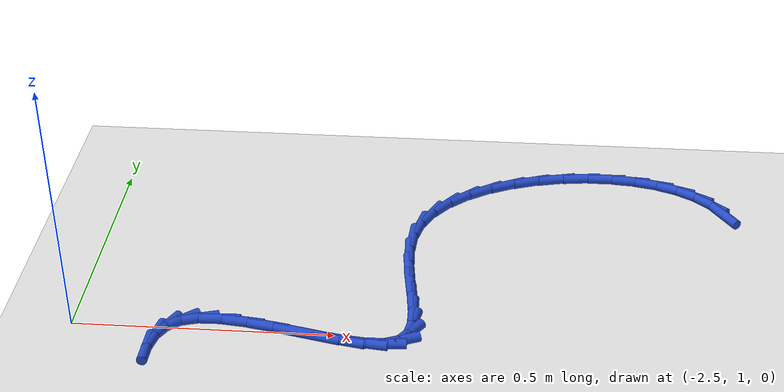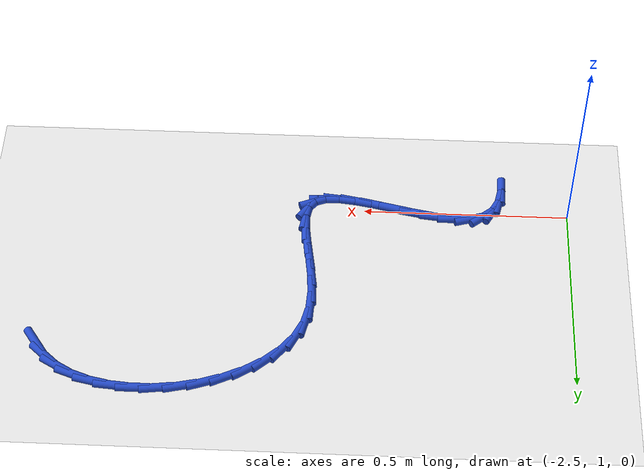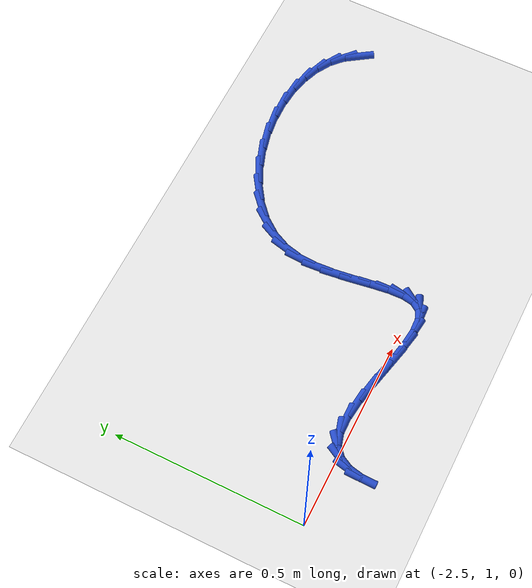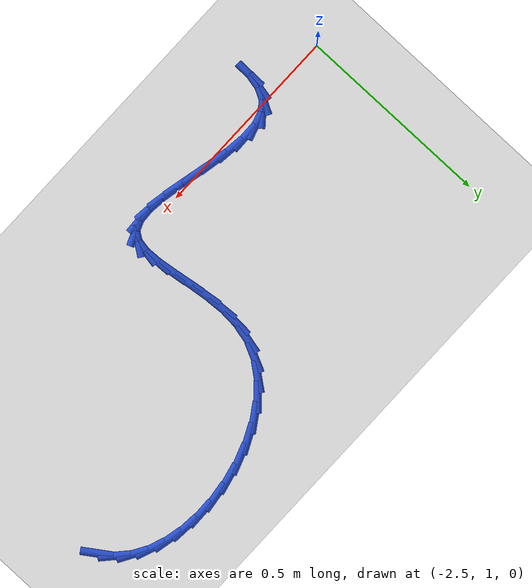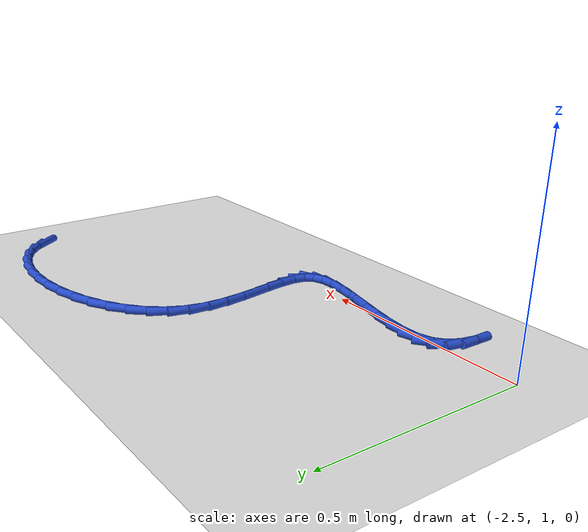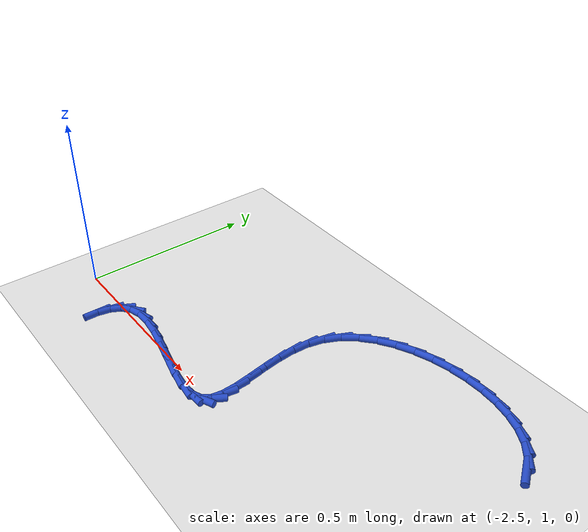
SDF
<sdf version="1.6">
 <world name="default">
  <model name="ground_plane">
   <static>1</static>
   <link name="link">
    <collision name="collision">
     <geometry><plane><normal>0 0 1</normal><size>100 100</size></plane></geometry>
     <surface><friction><ode><mu>100</mu><mu2>50</mu2></ode></friction></surface>
    </collision>
    <visual name="visual">
     <cast_shadows>0</cast_shadows>
     <geometry><plane><normal>0 0 1</normal><size>100 100</size></plane></geometry>
     <material>
      <script><uri>file://media/materials/scripts/gazebo.material</uri><name>Gazebo/WhiteGlow</name></script>
     </material>
    </visual>
   </link>
  </model>
  <model name="line">
   <link name="link_56">
    <pose>-1.2430712738662402 1.4402257167788477 0.01 0 1.57 -0.9751484173841496</pose>
    <collision name="collision">
     <geometry><cylinder><radius>0.01</radius><length>0.08</length></cylinder></geometry>
    </collision>
    <visual name="visual">
     <material>
      <script><name>Gazebo/Blue</name><uri>file://media/materials/scripts/gazebo.material</uri></script>
     </material>
     <geometry><cylinder><radius>0.01</radius><length>0.08</length></cylinder></geometry>
    </visual>
   </link>
   <link name="link_57">
    <pose>-1.2673439345193092 1.4760384255572954 0.01 0 1.57 -0.7354734577616764</pose>
    <collision name="collision">
     <geometry><cylinder><radius>0.01</radius><length>0.08</length></cylinder></geometry>
    </collision>
    <visual name="visual">
     <material>
      <script><name>Gazebo/Blue</name><uri>file://media/materials/scripts/gazebo.material</uri></script>
     </material>
     <geometry><cylinder><radius>0.01</radius><length>0.08</length></cylinder></geometry>
    </visual>
   </link>
   <link name="link_58">
    <pose>-1.2996169337274308 1.505239783174713 0.01 0 1.57 -0.5281404327485768</pose>
    <collision name="collision">
     <geometry><cylinder><radius>0.01</radius><length>0.08</length></cylinder></geometry>
    </collision>
    <visual name="visual">
     <material>
      <script><name>Gazebo/Blue</name><uri>file://media/materials/scripts/gazebo.material</uri></script>
     </material>
     <geometry><cylinder><radius>0.01</radius><length>0.08</length></cylinder></geometry>
    </visual>
   </link>
   <link name="link_59">
    <pose>-1.338615742700818 1.5279925374921302 0.01 0 1.57 -0.3547829683620413</pose>
    <collision name="collision">
     <geometry><cylinder><radius>0.01</radius><length>0.08</length></cylinder></geometry>
    </collision>
    <visual name="visual">
     <material>
      <script><name>Gazebo/Blue</name><uri>file://media/materials/scripts/gazebo.material</uri></script>
     </material>
     <geometry><cylinder><radius>0.01</radius><length>0.08</length></cylinder></geometry>
    </visual>
   </link>
   <link name="link_60">
    <pose>-1.3830658277974845 1.5444594402318201 0.01 0 1.57 -0.2095939920211379</pose>
    <collision name="collision">
     <geometry><cylinder><radius>0.01</radius><length>0.08</length></cylinder></geometry>
    </collision>
    <visual name="visual">
     <material>
      <script><name>Gazebo/Blue</name><uri>file://media/materials/scripts/gazebo.material</uri></script>
     </material>
     <geometry><cylinder><radius>0.01</radius><length>0.08</length></cylinder></geometry>
    </visual>
   </link>
   <link name="link_61">
    <pose>-1.4316926553754477 1.5548032431160592 0.01 0 1.57 -0.0848633526750717</pose>
    <collision name="collision">
     <geometry><cylinder><radius>0.01</radius><length>0.08</length></cylinder></geometry>
    </collision>
    <visual name="visual">
     <material>
      <script><name>Gazebo/Blue</name><uri>file://media/materials/scripts/gazebo.material</uri></script>
     </material>
     <geometry><cylinder><radius>0.01</radius><length>0.08</length></cylinder></geometry>
    </visual>
   </link>
   <link name="link_62">
    <pose>-1.4832216917927208 1.5591866978671198 0.01 0 1.57 0.026596983650536036</pose>
    <collision name="collision">
     <geometry><cylinder><radius>0.01</radius><length>0.08</length></cylinder></geometry>
    </collision>
    <visual name="visual">
     <material>
      <script><name>Gazebo/Blue</name><uri>file://media/materials/scripts/gazebo.material</uri></script>
     </material>
     <geometry><cylinder><radius>0.01</radius><length>0.08</length></cylinder></geometry>
    </visual>
   </link>
   <link name="link_63">
    <pose>-1.5363784034073211 1.557772556207277 0.01 0 1.57 0.1309783254316083</pose>
    <collision name="collision">
     <geometry><cylinder><radius>0.01</radius><length>0.08</length></cylinder></geometry>
    </collision>
    <visual name="visual">
     <material>
      <script><name>Gazebo/Blue</name><uri>file://media/materials/scripts/gazebo.material</uri></script>
     </material>
     <geometry><cylinder><radius>0.01</radius><length>0.08</length></cylinder></geometry>
    </visual>
   </link>
   <link name="link_64">
    <pose>-1.589888256577263 1.5507235698588053 0.01 0 1.57 0.2337434895289354</pose>
    <collision name="collision">
     <geometry><cylinder><radius>0.01</radius><length>0.08</length></cylinder></geometry>
    </collision>
    <visual name="visual">
     <material>
      <script><name>Gazebo/Blue</name><uri>file://media/materials/scripts/gazebo.material</uri></script>
     </material>
     <geometry><cylinder><radius>0.01</radius><length>0.08</length></cylinder></geometry>
    </visual>
   </link>
   <link name="link_65">
    <pose>-1.6424767176605615 1.5382024905439788 0.01 0 1.57 0.34008328821273814</pose>
    <collision name="collision">
     <geometry><cylinder><radius>0.01</radius><length>0.08</length></cylinder></geometry>
    </collision>
    <visual name="visual">
     <material>
      <script><name>Gazebo/Blue</name><uri>file://media/materials/scripts/gazebo.material</uri></script>
     </material>
     <geometry><cylinder><radius>0.01</radius><length>0.08</length></cylinder></geometry>
    </visual>
   </link>
   <link name="link_66">
    <pose>-1.6928692530152334 1.5203720699850714 0.01 0 1.57 0.4553611508947169</pose>
    <collision name="collision">
     <geometry><cylinder><radius>0.01</radius><length>0.08</length></cylinder></geometry>
    </collision>
    <visual name="visual">
     <material>
      <script><name>Gazebo/Blue</name><uri>file://media/materials/scripts/gazebo.material</uri></script>
     </material>
     <geometry><cylinder><radius>0.01</radius><length>0.08</length></cylinder></geometry>
    </visual>
   </link>
   <link name="link_67">
    <pose>-1.7397913289992926 1.4973950599043584 0.01 0 1.57 0.5854177110284497</pose>
    <collision name="collision">
     <geometry><cylinder><radius>0.01</radius><length>0.08</length></cylinder></geometry>
    </collision>
    <visual name="visual">
     <material>
      <script><name>Gazebo/Blue</name><uri>file://media/materials/scripts/gazebo.material</uri></script>
     </material>
     <geometry><cylinder><radius>0.01</radius><length>0.08</length></cylinder></geometry>
    </visual>
   </link>
   <link name="link_68">
    <pose>-1.7819684119707557 1.4694342120241128 0.01 0 1.57 0.7364722364024734</pose>
    <collision name="collision">
     <geometry><cylinder><radius>0.01</radius><length>0.08</length></cylinder></geometry>
    </collision>
    <visual name="visual">
     <material>
      <script><name>Gazebo/Blue</name><uri>file://media/materials/scripts/gazebo.material</uri></script>
     </material>
     <geometry><cylinder><radius>0.01</radius><length>0.08</length></cylinder></geometry>
    </visual>
   </link>
   <link name="link_69">
    <pose>-1.8181259682876365 1.4366522780666102 0.01 0 1.57 0.9140395593066732</pose>
    <collision name="collision">
     <geometry><cylinder><radius>0.01</radius><length>0.08</length></cylinder></geometry>
    </collision>
    <visual name="visual">
     <material>
      <script><name>Gazebo/Blue</name><uri>file://media/materials/scripts/gazebo.material</uri></script>
     </material>
     <geometry><cylinder><radius>0.01</radius><length>0.08</length></cylinder></geometry>
    </visual>
   </link>
   <link name="link_70">
    <pose>-1.846989464307952 1.3992120097541239 0.01 0 1.57 1.1200700555077303</pose>
    <collision name="collision">
     <geometry><cylinder><radius>0.01</radius><length>0.08</length></cylinder></geometry>
    </collision>
    <visual name="visual">
     <material>
      <script><name>Gazebo/Blue</name><uri>file://media/materials/scripts/gazebo.material</uri></script>
     </material>
     <geometry><cylinder><radius>0.01</radius><length>0.08</length></cylinder></geometry>
    </visual>
   </link>
   <link name="link_71">
    <pose>-1.8672843663897167 1.3572761588089288 0.01 0 1.57 1.3420315631926252</pose>
    <collision name="collision">
     <geometry><cylinder><radius>0.01</radius><length>0.08</length></cylinder></geometry>
    </collision>
    <visual name="visual">
     <material>
      <script><name>Gazebo/Blue</name><uri>file://media/materials/scripts/gazebo.material</uri></script>
     </material>
     <geometry><cylinder><radius>0.01</radius><length>0.08</length></cylinder></geometry>
    </visual>
   </link>
   <link name="link_72">
    <pose>-1.8780288161068972 1.3111311080971417 0.01 0 1.57 1.5189065009422862</pose>
    <collision name="collision">
     <geometry><cylinder><radius>0.01</radius><length>0.08</length></cylinder></geometry>
    </collision>
    <visual name="visual">
     <material>
      <script><name>Gazebo/Blue</name><uri>file://media/materials/scripts/gazebo.material</uri></script>
     </material>
     <geometry><cylinder><radius>0.01</radius><length>0.08</length></cylinder></geometry>
    </visual>
   </link>
   <link name="link_73">
    <pose>-1.8805778935338426 1.2620504042901757 0.01 0 1.57 -1.5077872612232122</pose>
    <collision name="collision">
     <geometry><cylinder><radius>0.01</radius><length>0.08</length></cylinder></geometry>
    </collision>
    <visual name="visual">
     <material>
      <script><name>Gazebo/Blue</name><uri>file://media/materials/scripts/gazebo.material</uri></script>
     </material>
     <geometry><cylinder><radius>0.01</radius><length>0.08</length></cylinder></geometry>
    </visual>
   </link>
   <link name="link_74">
    <pose>-1.8774062363507895 1.2117805148257754 0.01 0 1.57 -1.4425407296851207</pose>
    <collision name="collision">
     <geometry><cylinder><radius>0.01</radius><length>0.08</length></cylinder></geometry>
    </collision>
    <visual name="visual">
     <material>
      <script><name>Gazebo/Blue</name><uri>file://media/materials/scripts/gazebo.material</uri></script>
     </material>
     <geometry><cylinder><radius>0.01</radius><length>0.08</length></cylinder></geometry>
    </visual>
   </link>
   <link name="link_75">
    <pose>-1.870995507053019 1.1620708745467545 0.01 0 1.57 -1.4207068899789832</pose>
    <collision name="collision">
     <geometry><cylinder><radius>0.01</radius><length>0.08</length></cylinder></geometry>
    </collision>
    <visual name="visual">
     <material>
      <script><name>Gazebo/Blue</name><uri>file://media/materials/scripts/gazebo.material</uri></script>
     </material>
     <geometry><cylinder><radius>0.01</radius><length>0.08</length></cylinder></geometry>
    </visual>
   </link>
   <link name="link_76">
    <pose>-1.8638273681358122 1.1146709182959267 0.01 0 1.57 -1.4458443178039633</pose>
    <collision name="collision">
     <geometry><cylinder><radius>0.01</radius><length>0.08</length></cylinder></geometry>
    </collision>
    <visual name="visual">
     <material>
      <script><name>Gazebo/Blue</name><uri>file://media/materials/scripts/gazebo.material</uri></script>
     </material>
     <geometry><cylinder><radius>0.01</radius><length>0.08</length></cylinder></geometry>
    </visual>
   </link>
   <link name="link_77">
    <pose>-1.858383482094449 1.0713300809161055 0.01 0 1.57 -1.537824125524946</pose>
    <collision name="collision">
     <geometry><cylinder><radius>0.01</radius><length>0.08</length></cylinder></geometry>
    </collision>
    <visual name="visual">
     <material>
      <script><name>Gazebo/Blue</name><uri>file://media/materials/scripts/gazebo.material</uri></script>
     </material>
     <geometry><cylinder><radius>0.01</radius><length>0.08</length></cylinder></geometry>
    </visual>
   </link>
   <link name="link_78">
    <pose>-1.85714551142421 1.0337977972501036 0.01 0 1.57 1.3909513734505157</pose>
    <collision name="collision">
     <geometry><cylinder><radius>0.01</radius><length>0.08</length></cylinder></geometry>
    </collision>
    <visual name="visual">
     <material>
      <script><name>Gazebo/Blue</name><uri>file://media/materials/scripts/gazebo.material</uri></script>
     </material>
     <geometry><cylinder><radius>0.01</radius><length>0.08</length></cylinder></geometry>
    </visual>
   </link>
   <link name="link_79">
    <pose>-1.8625951186203766 1.0038235021407358 0.01 0 1.57 0.9551630711257696</pose>
    <collision name="collision">
     <geometry><cylinder><radius>0.01</radius><length>0.08</length></cylinder></geometry>
    </collision>
    <visual name="visual">
     <material>
      <script><name>Gazebo/Blue</name><uri>file://media/materials/scripts/gazebo.material</uri></script>
     </material>
     <geometry><cylinder><radius>0.01</radius><length>0.08</length></cylinder></geometry>
    </visual>
   </link>
   <link name="link_80">
    <pose>-1.8772137148671415 0.9831564175285533 0.01 0 1.57 0.389556793150939</pose>
    <collision name="collision">
     <geometry><cylinder><radius>0.01</radius><length>0.08</length></cylinder></geometry>
    </collision>
    <visual name="visual">
     <material>
      <script><name>Gazebo/Blue</name><uri>file://media/materials/scripts/gazebo.material</uri></script>
     </material>
     <geometry><cylinder><radius>0.01</radius><length>0.08</length></cylinder></geometry>
    </visual>
   </link>
   <link name="link_81">
    <pose>-1.902549469952172 0.9727551547793275 0.01 0 1.57 0.05060128859804453</pose>
    <collision name="collision">
     <geometry><cylinder><radius>0.01</radius><length>0.08</length></cylinder></geometry>
    </collision>
    <visual name="visual">
     <material>
      <script><name>Gazebo/Blue</name><uri>file://media/materials/scripts/gazebo.material</uri></script>
     </material>
     <geometry><cylinder><radius>0.01</radius><length>0.08</length></cylinder></geometry>
    </visual>
   </link>
   <link name="link_82">
    <pose>-1.93711265351009 0.9710047189067401 0.01 0 1.57 -0.11376233831450944</pose>
    <collision name="collision">
     <geometry><cylinder><radius>0.01</radius><length>0.08</length></cylinder></geometry>
    </collision>
    <visual name="visual">
     <material>
      <script><name>Gazebo/Blue</name><uri>file://media/materials/scripts/gazebo.material</uri></script>
     </material>
     <geometry><cylinder><radius>0.01</radius><length>0.08</length></cylinder></geometry>
    </visual>
   </link>
   <link name="link_83">
    <pose>-1.9787964326556053 0.9757673265229043 0.01 0 1.57 -0.1932401963782218</pose>
    <collision name="collision">
     <geometry><cylinder><radius>0.01</radius><length>0.08</length></cylinder></geometry>
    </collision>
    <visual name="visual">
     <material>
      <script><name>Gazebo/Blue</name><uri>file://media/materials/scripts/gazebo.material</uri></script>
     </material>
     <geometry><cylinder><radius>0.01</radius><length>0.08</length></cylinder></geometry>
    </visual>
   </link>
   <link name="link_84">
    <pose>-2.0254939745034255 0.9849051942399328 0.01 0 1.57 -0.22542335674840253</pose>
    <collision name="collision">
     <geometry><cylinder><radius>0.01</radius><length>0.08</length></cylinder></geometry>
    </collision>
    <visual name="visual">
     <material>
      <script><name>Gazebo/Blue</name><uri>file://media/materials/scripts/gazebo.material</uri></script>
     </material>
     <geometry><cylinder><radius>0.01</radius><length>0.08</length></cylinder></geometry>
    </visual>
   </link>
   <link name="link_85">
    <pose>-2.0750984461682607 0.9962805386699393 0.01 0 1.57 -0.2238435706409906</pose>
    <collision name="collision">
     <geometry><cylinder><radius>0.01</radius><length>0.08</length></cylinder></geometry>
    </collision>
    <visual name="visual">
     <material>
      <script><name>Gazebo/Blue</name><uri>file://media/materials/scripts/gazebo.material</uri></script>
     </material>
     <geometry><cylinder><radius>0.01</radius><length>0.08</length></cylinder></geometry>
    </visual>
   </link>
   <link name="link_86">
    <pose>-2.125503014764819 1.0077555764250365 0.01 0 1.57 -0.18989119608630875</pose>
    <collision name="collision">
     <geometry><cylinder><radius>0.01</radius><length>0.08</length></cylinder></geometry>
    </collision>
    <visual name="visual">
     <material>
      <script><name>Gazebo/Blue</name><uri>file://media/materials/scripts/gazebo.material</uri></script>
     </material>
     <geometry><cylinder><radius>0.01</radius><length>0.08</length></cylinder></geometry>
    </visual>
   </link>
   <link name="link_87">
    <pose>-2.1746008474078105 1.0171925241173378 0.01 0 1.57 -0.11465654324532877</pose>
    <collision name="collision">
     <geometry><cylinder><radius>0.01</radius><length>0.08</length></cylinder></geometry>
    </collision>
    <visual name="visual">
     <material>
      <script><name>Gazebo/Blue</name><uri>file://media/materials/scripts/gazebo.material</uri></script>
     </material>
     <geometry><cylinder><radius>0.01</radius><length>0.08</length></cylinder></geometry>
    </visual>
   </link>
   <link name="link_88">
    <pose>-2.220285111211943 1.022453598358956 0.01 0 1.57 0.026201208356970054</pose>
    <collision name="collision">
     <geometry><cylinder><radius>0.01</radius><length>0.08</length></cylinder></geometry>
    </collision>
    <visual name="visual">
     <material>
      <script><name>Gazebo/Blue</name><uri>file://media/materials/scripts/gazebo.material</uri></script>
     </material>
     <geometry><cylinder><radius>0.01</radius><length>0.08</length></cylinder></geometry>
    </visual>
   </link>
   <link name="link_89">
    <pose>-2.2604489732919264 1.0214010157620044 0.01 0 1.57 0.28414990322292666</pose>
    <collision name="collision">
     <geometry><cylinder><radius>0.01</radius><length>0.08</length></cylinder></geometry>
    </collision>
    <visual name="visual">
     <material>
      <script><name>Gazebo/Blue</name><uri>file://media/materials/scripts/gazebo.material</uri></script>
     </material>
     <geometry><cylinder><radius>0.01</radius><length>0.08</length></cylinder></geometry>
    </visual>
   </link>
   <link name="link_90">
    <pose>-2.29298668647222 1.0118982865644905 0.01 0 1.57 0.6858695822792437</pose>
    <collision name="collision">
     <geometry><cylinder><radius>0.01</radius><length>0.08</length></cylinder></geometry>
    </collision>
    <visual name="visual">
     <material>
      <script><name>Gazebo/Blue</name><uri>file://media/materials/scripts/gazebo.material</uri></script>
     </material>
     <geometry><cylinder><radius>0.01</radius><length>0.08</length></cylinder></geometry>
    </visual>
   </link>
   <link name="link_91">
    <pose>-2.3165013519165254 0.9926535155809635 0.01 0 1.57 1.0779765642616914</pose>
    <collision name="collision">
     <geometry><cylinder><radius>0.01</radius><length>0.08</length></cylinder></geometry>
    </collision>
    <visual name="visual">
     <material>
      <script><name>Gazebo/Blue</name><uri>file://media/materials/scripts/gazebo.material</uri></script>
     </material>
     <geometry><cylinder><radius>0.01</radius><length>0.08</length></cylinder></geometry>
    </visual>
   </link>
   <link name="link_92">
    <pose>-2.331526374963268 0.9646747698982847 0.01 0 1.57 1.3644074173668799</pose>
    <collision name="collision">
     <geometry><cylinder><radius>0.01</radius><length>0.08</length></cylinder></geometry>
    </collision>
    <visual name="visual">
     <material>
      <script><name>Gazebo/Blue</name><uri>file://media/materials/scripts/gazebo.material</uri></script>
     </material>
     <geometry><cylinder><radius>0.01</radius><length>0.08</length></cylinder></geometry>
    </visual>
   </link>
   <link name="link_93">
    <pose>-2.3389206634851303 0.9293579536904081 0.01 0 1.57 1.5557107718045537</pose>
    <collision name="collision">
     <geometry><cylinder><radius>0.01</radius><length>0.08</length></cylinder></geometry>
    </collision>
    <visual name="visual">
     <material>
      <script><name>Gazebo/Blue</name><uri>file://media/materials/scripts/gazebo.material</uri></script>
     </material>
     <geometry><cylinder><radius>0.01</radius><length>0.08</length></cylinder></geometry>
    </visual>
   </link>
  </model>
 </world>
</sdf>
